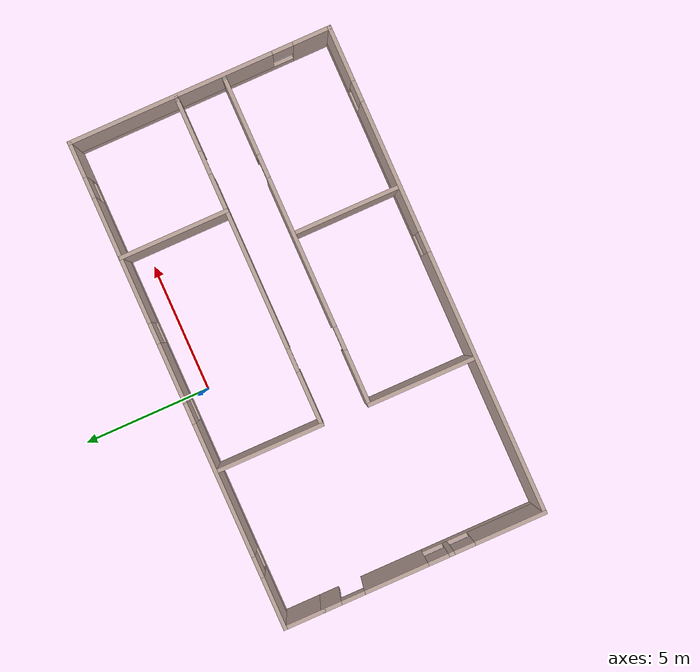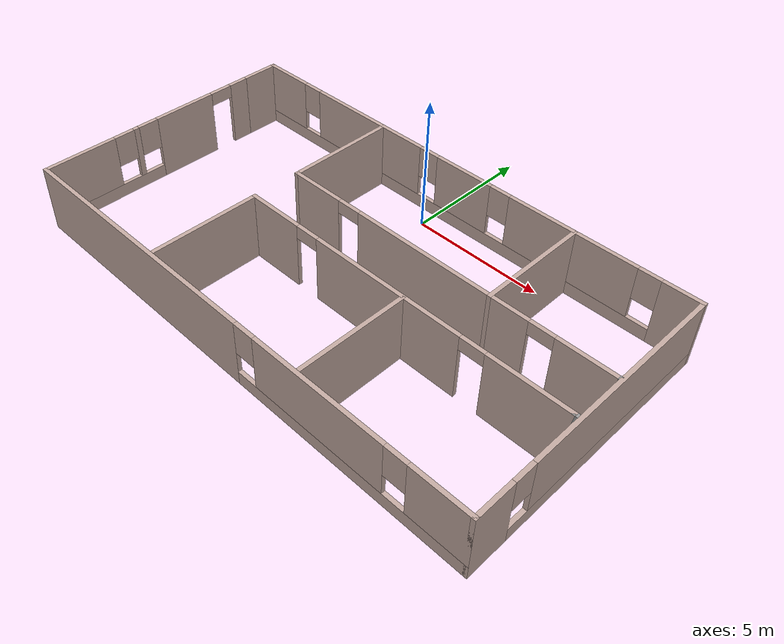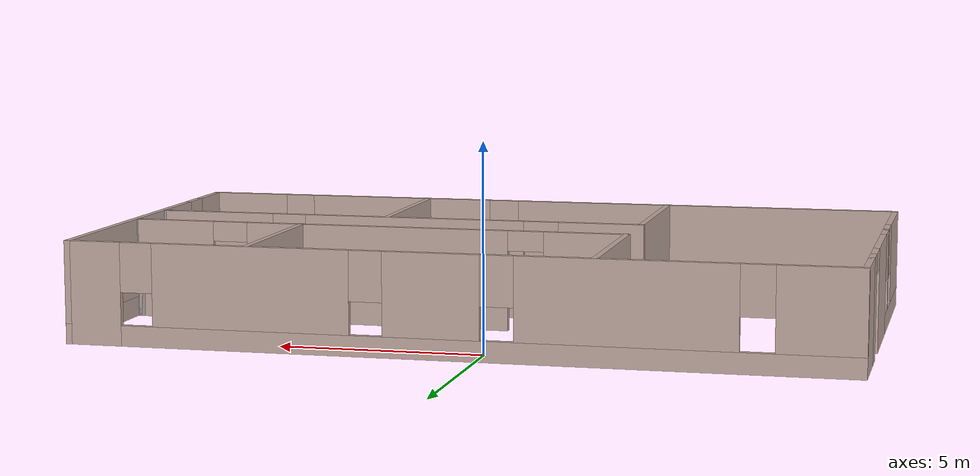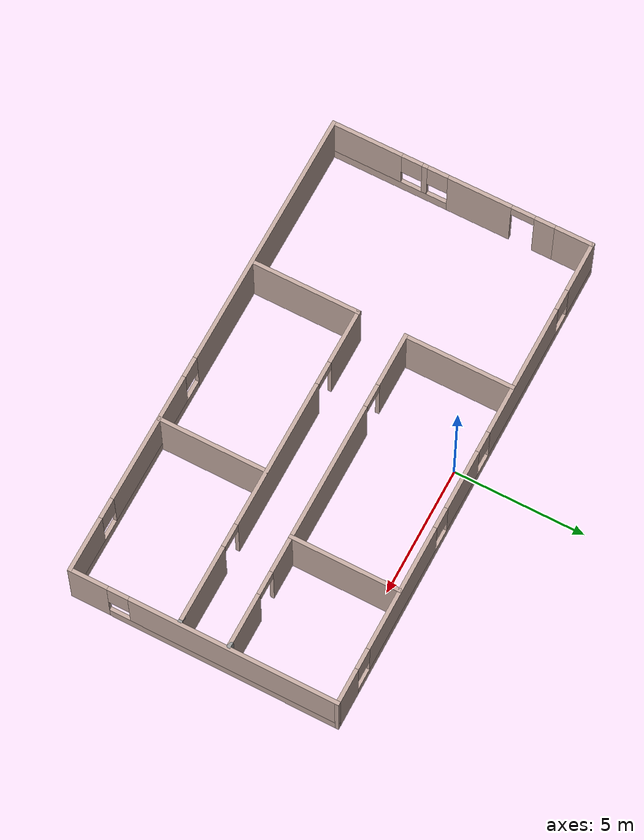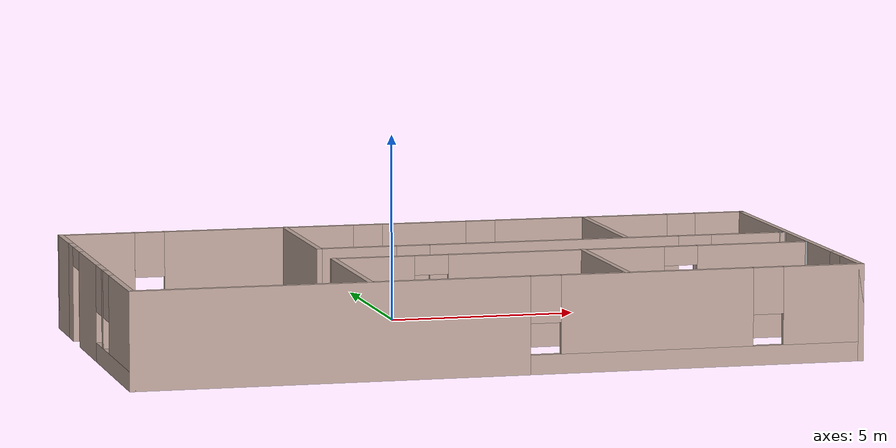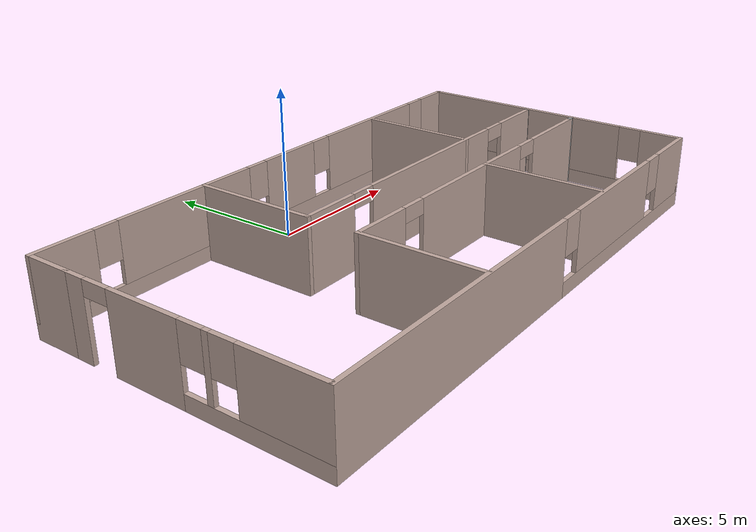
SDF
<?xml version='1.0'?>
<sdf version='1.6'>
  <model name='House_1level'>
    <pose frame=''>0.595293 -4.28963 0 0 -0 0</pose>
    <link name='Wall_0'>
      <pose frame=''>-9.425 -0.75 0 0 0 -1.5708</pose>
      <visual name='Wall_0_Visual_0'>
        <pose frame=''>-3.98433 0 1.25 0 -0 0</pose>
        <geometry>
          <box>
            <size>0.781343 0.15 2.5</size>
          </box>
        </geometry>
        <material>
          <script>
            <uri>file://media/materials/scripts/gazebo.material</uri>
            <name>Gazebo/Grey</name>
          </script>
          <ambient>0.760784 0.662745 0.627451 1</ambient>
        </material>
        <meta>
          <layer>0</layer>
        </meta>
      </visual>
      <collision name='Wall_0_Collision_0'>
        <geometry>
          <box>
            <size>0.781343 0.15 2.5</size>
          </box>
        </geometry>
        <pose frame=''>-3.98433 0 1.25 0 -0 0</pose>
      </collision>
      <visual name='Wall_0_Visual_1'>
        <pose frame=''>-1.4583 0 1.25 0 -0 0</pose>
        <geometry>
          <box>
            <size>2.47071 0.15 2.5</size>
          </box>
        </geometry>
        <material>
          <script>
            <uri>file://media/materials/scripts/gazebo.material</uri>
            <name>Gazebo/Grey</name>
          </script>
          <ambient>0.760784 0.662745 0.627451 1</ambient>
        </material>
        <meta>
          <layer>0</layer>
        </meta>
      </visual>
      <collision name='Wall_0_Collision_1'>
        <geometry>
          <box>
            <size>2.47071 0.15 2.5</size>
          </box>
        </geometry>
        <pose frame=''>-1.4583 0 1.25 0 -0 0</pose>
      </collision>
      <visual name='Wall_0_Visual_2'>
        <pose frame=''>2.07602 0 0.25 0 -0 0</pose>
        <geometry>
          <box>
            <size>4.59795 0.15 0.5</size>
          </box>
        </geometry>
        <material>
          <script>
            <uri>file://media/materials/scripts/gazebo.material</uri>
            <name>Gazebo/Grey</name>
          </script>
          <ambient>0.760784 0.662745 0.627451 1</ambient>
        </material>
        <meta>
          <layer>0</layer>
        </meta>
      </visual>
      <collision name='Wall_0_Collision_2'>
        <geometry>
          <box>
            <size>4.59795 0.15 0.5</size>
          </box>
        </geometry>
        <pose frame=''>2.07602 0 0.25 0 -0 0</pose>
      </collision>
      <visual name='Wall_0_Visual_3'>
        <pose frame=''>0.681787 0 1.5 0 -0 0</pose>
        <geometry>
          <box>
            <size>0.209478 0.15 2</size>
          </box>
        </geometry>
        <material>
          <script>
            <uri>file://media/materials/scripts/gazebo.material</uri>
            <name>Gazebo/Grey</name>
          </script>
          <ambient>0.760784 0.662745 0.627451 1</ambient>
        </material>
        <meta>
          <layer>0</layer>
        </meta>
      </visual>
      <collision name='Wall_0_Collision_3'>
        <geometry>
          <box>
            <size>0.209478 0.15 2</size>
          </box>
        </geometry>
        <pose frame=''>0.681787 0 1.5 0 -0 0</pose>
      </collision>
      <visual name='Wall_0_Visual_4'>
        <pose frame=''>2.98076 0 1.5 0 -0 0</pose>
        <geometry>
          <box>
            <size>2.78847 0.15 2</size>
          </box>
        </geometry>
        <material>
          <script>
            <uri>file://media/materials/scripts/gazebo.material</uri>
            <name>Gazebo/Grey</name>
          </script>
          <ambient>0.760784 0.662745 0.627451 1</ambient>
        </material>
        <meta>
          <layer>0</layer>
        </meta>
      </visual>
      <collision name='Wall_0_Collision_4'>
        <geometry>
          <box>
            <size>2.78847 0.15 2</size>
          </box>
        </geometry>
        <pose frame=''>2.98076 0 1.5 0 -0 0</pose>
      </collision>
      <visual name='Wall_0_Visual_5'>
        <pose frame=''>0.177048 0 1.9 0 -0 0</pose>
        <geometry>
          <box>
            <size>0.8 0.15 1.2</size>
          </box>
        </geometry>
        <material>
          <script>
            <uri>file://media/materials/scripts/gazebo.material</uri>
            <name>Gazebo/Grey</name>
          </script>
          <ambient>0.760784 0.662745 0.627451 1</ambient>
        </material>
        <meta>
          <layer>0</layer>
        </meta>
      </visual>
      <collision name='Wall_0_Collision_5'>
        <geometry>
          <box>
            <size>0.8 0.15 1.2</size>
          </box>
        </geometry>
        <pose frame=''>0.177048 0 1.9 0 -0 0</pose>
      </collision>
      <visual name='Wall_0_Visual_6'>
        <pose frame=''>1.18653 0 1.9 0 -0 0</pose>
        <geometry>
          <box>
            <size>0.8 0.15 1.2</size>
          </box>
        </geometry>
        <material>
          <script>
            <uri>file://media/materials/scripts/gazebo.material</uri>
            <name>Gazebo/Grey</name>
          </script>
          <ambient>0.760784 0.662745 0.627451 1</ambient>
        </material>
        <meta>
          <layer>0</layer>
        </meta>
      </visual>
      <collision name='Wall_0_Collision_6'>
        <geometry>
          <box>
            <size>0.8 0.15 1.2</size>
          </box>
        </geometry>
        <pose frame=''>1.18653 0 1.9 0 -0 0</pose>
      </collision>
      <visual name='Wall_0_Visual_7'>
        <pose frame=''>-3.14366 0 2.25 0 -0 0</pose>
        <geometry>
          <box>
            <size>0.9 0.15 0.5</size>
          </box>
        </geometry>
        <material>
          <script>
            <uri>file://media/materials/scripts/gazebo.material</uri>
            <name>Gazebo/Grey</name>
          </script>
          <ambient>0.760784 0.662745 0.627451 1</ambient>
        </material>
        <meta>
          <layer>0</layer>
        </meta>
      </visual>
      <collision name='Wall_0_Collision_7'>
        <geometry>
          <box>
            <size>0.9 0.15 0.5</size>
          </box>
        </geometry>
        <pose frame=''>-3.14366 0 2.25 0 -0 0</pose>
      </collision>
    </link>
    <link name='Wall_1'>
      <pose frame=''>0 -5.05 0 0 -0 0</pose>
      <visual name='Wall_1_Visual_0'>
        <pose frame=''>-4.39559 0 1.25 0 -0 0</pose>
        <geometry>
          <box>
            <size>10.2088 0.15 2.5</size>
          </box>
        </geometry>
        <material>
          <script>
            <uri>file://media/materials/scripts/gazebo.material</uri>
            <name>Gazebo/Grey</name>
          </script>
          <ambient>0.760784 0.662745 0.627451 1</ambient>
        </material>
        <meta>
          <layer>0</layer>
        </meta>
      </visual>
      <collision name='Wall_1_Collision_0'>
        <geometry>
          <box>
            <size>10.2088 0.15 2.5</size>
          </box>
        </geometry>
        <pose frame=''>-4.39559 0 1.25 0 -0 0</pose>
      </collision>
      <visual name='Wall_1_Visual_1'>
        <pose frame=''>5.10441 0 0.25 0 -0 0</pose>
        <geometry>
          <box>
            <size>8.79118 0.15 0.5</size>
          </box>
        </geometry>
        <material>
          <script>
            <uri>file://media/materials/scripts/gazebo.material</uri>
            <name>Gazebo/Grey</name>
          </script>
          <ambient>0.760784 0.662745 0.627451 1</ambient>
        </material>
        <meta>
          <layer>0</layer>
        </meta>
      </visual>
      <collision name='Wall_1_Collision_1'>
        <geometry>
          <box>
            <size>8.79118 0.15 0.5</size>
          </box>
        </geometry>
        <pose frame=''>5.10441 0 0.25 0 -0 0</pose>
      </collision>
      <visual name='Wall_1_Visual_2'>
        <pose frame=''>4.03018 0 1.5 0 -0 0</pose>
        <geometry>
          <box>
            <size>5.04273 0.15 2</size>
          </box>
        </geometry>
        <material>
          <script>
            <uri>file://media/materials/scripts/gazebo.material</uri>
            <name>Gazebo/Grey</name>
          </script>
          <ambient>0.760784 0.662745 0.627451 1</ambient>
        </material>
        <meta>
          <layer>0</layer>
        </meta>
      </visual>
      <collision name='Wall_1_Collision_2'>
        <geometry>
          <box>
            <size>5.04273 0.15 2</size>
          </box>
        </geometry>
        <pose frame=''>4.03018 0 1.5 0 -0 0</pose>
      </collision>
      <visual name='Wall_1_Visual_3'>
        <pose frame=''>8.42577 0 1.5 0 -0 0</pose>
        <geometry>
          <box>
            <size>2.14845 0.15 2</size>
          </box>
        </geometry>
        <material>
          <script>
            <uri>file://media/materials/scripts/gazebo.material</uri>
            <name>Gazebo/Grey</name>
          </script>
          <ambient>0.760784 0.662745 0.627451 1</ambient>
        </material>
        <meta>
          <layer>0</layer>
        </meta>
      </visual>
      <collision name='Wall_1_Collision_3'>
        <geometry>
          <box>
            <size>2.14845 0.15 2</size>
          </box>
        </geometry>
        <pose frame=''>8.42577 0 1.5 0 -0 0</pose>
      </collision>
      <visual name='Wall_1_Visual_4'>
        <pose frame=''>1.10882 0 1.9 0 -0 0</pose>
        <geometry>
          <box>
            <size>0.8 0.15 1.2</size>
          </box>
        </geometry>
        <material>
          <script>
            <uri>file://media/materials/scripts/gazebo.material</uri>
            <name>Gazebo/Grey</name>
          </script>
          <ambient>0.760784 0.662745 0.627451 1</ambient>
        </material>
        <meta>
          <layer>0</layer>
        </meta>
      </visual>
      <collision name='Wall_1_Collision_4'>
        <geometry>
          <box>
            <size>0.8 0.15 1.2</size>
          </box>
        </geometry>
        <pose frame=''>1.10882 0 1.9 0 -0 0</pose>
      </collision>
      <visual name='Wall_1_Visual_5'>
        <pose frame=''>6.95155 0 1.9 0 -0 0</pose>
        <geometry>
          <box>
            <size>0.8 0.15 1.2</size>
          </box>
        </geometry>
        <material>
          <script>
            <uri>file://media/materials/scripts/gazebo.material</uri>
            <name>Gazebo/Grey</name>
          </script>
          <ambient>0.760784 0.662745 0.627451 1</ambient>
        </material>
        <meta>
          <layer>0</layer>
        </meta>
      </visual>
      <collision name='Wall_1_Collision_5'>
        <geometry>
          <box>
            <size>0.8 0.15 1.2</size>
          </box>
        </geometry>
        <pose frame=''>6.95155 0 1.9 0 -0 0</pose>
      </collision>
    </link>
    <link name='Wall_10'>
      <collision name='Wall_10_Collision'>
        <geometry>
          <box>
            <size>4.25 0.15 2.5</size>
          </box>
        </geometry>
        <pose frame=''>0 0 1.25 0 -0 0</pose>
      </collision>
      <visual name='Wall_10_Visual'>
        <pose frame=''>0 0 1.25 0 -0 0</pose>
        <geometry>
          <box>
            <size>4.25 0.15 2.5</size>
          </box>
        </geometry>
        <material>
          <script>
            <uri>file://media/materials/scripts/gazebo.material</uri>
            <name>Gazebo/Grey</name>
          </script>
          <ambient>0.760784 0.662745 0.627451 1</ambient>
        </material>
        <meta>
          <layer>0</layer>
        </meta>
      </visual>
      <pose frame=''>-3.39206 -2.96315 0 0 0 -1.5708</pose>
    </link>
    <link name='Wall_12'>
      <pose frame=''>2.90794 -0.913146 0 0 -0 0</pose>
      <visual name='Wall_12_Visual_0'>
        <pose frame=''>-5.27566 0 1.25 0 -0 0</pose>
        <geometry>
          <box>
            <size>2.19869 0.15 2.5</size>
          </box>
        </geometry>
        <material>
          <script>
            <uri>file://media/materials/scripts/gazebo.material</uri>
            <name>Gazebo/Grey</name>
          </script>
          <ambient>0.760784 0.662745 0.627451 1</ambient>
        </material>
        <meta>
          <layer>0</layer>
        </meta>
      </visual>
      <collision name='Wall_12_Collision_0'>
        <geometry>
          <box>
            <size>2.19869 0.15 2.5</size>
          </box>
        </geometry>
        <pose frame=''>-5.27566 0 1.25 0 -0 0</pose>
      </collision>
      <visual name='Wall_12_Visual_1'>
        <pose frame=''>-0.37668 0 1.25 0 -0 0</pose>
        <geometry>
          <box>
            <size>5.79926 0.15 2.5</size>
          </box>
        </geometry>
        <material>
          <script>
            <uri>file://media/materials/scripts/gazebo.material</uri>
            <name>Gazebo/Grey</name>
          </script>
          <ambient>0.760784 0.662745 0.627451 1</ambient>
        </material>
        <meta>
          <layer>0</layer>
        </meta>
      </visual>
      <collision name='Wall_12_Collision_1'>
        <geometry>
          <box>
            <size>5.79926 0.15 2.5</size>
          </box>
        </geometry>
        <pose frame=''>-0.37668 0 1.25 0 -0 0</pose>
      </collision>
      <visual name='Wall_12_Visual_2'>
        <pose frame=''>4.89898 0 1.25 0 -0 0</pose>
        <geometry>
          <box>
            <size>2.95205 0.15 2.5</size>
          </box>
        </geometry>
        <material>
          <script>
            <uri>file://media/materials/scripts/gazebo.material</uri>
            <name>Gazebo/Grey</name>
          </script>
          <ambient>0.760784 0.662745 0.627451 1</ambient>
        </material>
        <meta>
          <layer>0</layer>
        </meta>
      </visual>
      <collision name='Wall_12_Collision_2'>
        <geometry>
          <box>
            <size>2.95205 0.15 2.5</size>
          </box>
        </geometry>
        <pose frame=''>4.89898 0 1.25 0 -0 0</pose>
      </collision>
      <visual name='Wall_12_Visual_3'>
        <pose frame=''>-3.72631 0 2.25 0 -0 0</pose>
        <geometry>
          <box>
            <size>0.9 0.15 0.5</size>
          </box>
        </geometry>
        <material>
          <script>
            <uri>file://media/materials/scripts/gazebo.material</uri>
            <name>Gazebo/Grey</name>
          </script>
          <ambient>0.760784 0.662745 0.627451 1</ambient>
        </material>
        <meta>
          <layer>0</layer>
        </meta>
      </visual>
      <collision name='Wall_12_Collision_3'>
        <geometry>
          <box>
            <size>0.9 0.15 0.5</size>
          </box>
        </geometry>
        <pose frame=''>-3.72631 0 2.25 0 -0 0</pose>
      </collision>
      <visual name='Wall_12_Visual_4'>
        <pose frame=''>2.97295 0 2.25 0 -0 0</pose>
        <geometry>
          <box>
            <size>0.9 0.15 0.5</size>
          </box>
        </geometry>
        <material>
          <script>
            <uri>file://media/materials/scripts/gazebo.material</uri>
            <name>Gazebo/Grey</name>
          </script>
          <ambient>0.760784 0.662745 0.627451 1</ambient>
        </material>
        <meta>
          <layer>0</layer>
        </meta>
      </visual>
      <collision name='Wall_12_Collision_4'>
        <geometry>
          <box>
            <size>0.9 0.15 0.5</size>
          </box>
        </geometry>
        <pose frame=''>2.97295 0 2.25 0 -0 0</pose>
      </collision>
    </link>
    <link name='Wall_13'>
      <collision name='Wall_13_Collision'>
        <geometry>
          <box>
            <size>0.25 0.15 2.5</size>
          </box>
        </geometry>
        <pose frame=''>0 0 1.25 0 -0 0</pose>
      </collision>
      <visual name='Wall_13_Visual'>
        <pose frame=''>0 0 1.25 0 -0 0</pose>
        <geometry>
          <box>
            <size>0.25 0.15 2.5</size>
          </box>
        </geometry>
        <material>
          <script>
            <uri>file://media/materials/scripts/gazebo.material</uri>
            <name>Gazebo/Grey</name>
          </script>
          <ambient>1 1 1 1</ambient>
        </material>
        <meta>
          <layer>0</layer>
        </meta>
      </visual>
      <pose frame=''>9.25794 -0.913146 0 0 -0 0</pose>
    </link>
    <link name='Wall_16'>
      <collision name='Wall_16_Collision'>
        <geometry>
          <box>
            <size>4.25 0.15 2.5</size>
          </box>
        </geometry>
        <pose frame=''>0 0 1.25 0 -0 0</pose>
      </collision>
      <visual name='Wall_16_Visual'>
        <pose frame=''>0 0 1.25 0 -0 0</pose>
        <geometry>
          <box>
            <size>4.25 0.15 2.5</size>
          </box>
        </geometry>
        <material>
          <script>
            <uri>file://media/materials/scripts/gazebo.material</uri>
            <name>Gazebo/Grey</name>
          </script>
          <ambient>0.760784 0.662745 0.627451 1</ambient>
        </material>
        <meta>
          <layer>0</layer>
        </meta>
      </visual>
      <pose frame=''>4.9606 2.98206 0 0 0 -1.5708</pose>
    </link>
    <link name='Wall_18'>
      <collision name='Wall_18_Collision'>
        <geometry>
          <box>
            <size>4.25 0.15 2.5</size>
          </box>
        </geometry>
        <pose frame=''>0 0 1.25 0 -0 0</pose>
      </collision>
      <visual name='Wall_18_Visual'>
        <pose frame=''>0 0 1.25 0 -0 0</pose>
        <geometry>
          <box>
            <size>4.25 0.15 2.5</size>
          </box>
        </geometry>
        <material>
          <script>
            <uri>file://media/materials/scripts/gazebo.material</uri>
            <name>Gazebo/Grey</name>
          </script>
          <ambient>0.760784 0.662745 0.627451 1</ambient>
        </material>
        <meta>
          <layer>0</layer>
        </meta>
      </visual>
      <pose frame=''>3.25673 -2.96315 0 0 0 -1.5708</pose>
    </link>
    <link name='Wall_2'>
      <pose frame=''>9.425 0 0 0 -0 1.5708</pose>
      <visual name='Wall_2_Visual_0'>
        <pose frame=''>-4.37316 0 1.25 0 -0 0</pose>
        <geometry>
          <box>
            <size>1.50368 0.15 2.5</size>
          </box>
        </geometry>
        <material>
          <script>
            <uri>file://media/materials/scripts/gazebo.material</uri>
            <name>Gazebo/Grey</name>
          </script>
          <ambient>0.760784 0.662745 0.627451 1</ambient>
        </material>
        <meta>
          <layer>0</layer>
        </meta>
      </visual>
      <collision name='Wall_2_Collision_0'>
        <geometry>
          <box>
            <size>1.50368 0.15 2.5</size>
          </box>
        </geometry>
        <pose frame=''>-4.37316 0 1.25 0 -0 0</pose>
      </collision>
      <visual name='Wall_2_Visual_1'>
        <pose frame=''>0.751842 0 0.25 0 -0 0</pose>
        <geometry>
          <box>
            <size>8.74631 0.15 0.5</size>
          </box>
        </geometry>
        <material>
          <script>
            <uri>file://media/materials/scripts/gazebo.material</uri>
            <name>Gazebo/Grey</name>
          </script>
          <ambient>0.760784 0.662745 0.627451 1</ambient>
        </material>
        <meta>
          <layer>0</layer>
        </meta>
      </visual>
      <collision name='Wall_2_Collision_1'>
        <geometry>
          <box>
            <size>8.74631 0.15 0.5</size>
          </box>
        </geometry>
        <pose frame=''>0.751842 0 0.25 0 -0 0</pose>
      </collision>
      <visual name='Wall_2_Visual_2'>
        <pose frame=''>1.15184 0 1.5 0 -0 0</pose>
        <geometry>
          <box>
            <size>7.94632 0.15 2</size>
          </box>
        </geometry>
        <material>
          <script>
            <uri>file://media/materials/scripts/gazebo.material</uri>
            <name>Gazebo/Grey</name>
          </script>
          <ambient>0.760784 0.662745 0.627451 1</ambient>
        </material>
        <meta>
          <layer>0</layer>
        </meta>
      </visual>
      <collision name='Wall_2_Collision_2'>
        <geometry>
          <box>
            <size>7.94632 0.15 2</size>
          </box>
        </geometry>
        <pose frame=''>1.15184 0 1.5 0 -0 0</pose>
      </collision>
      <visual name='Wall_2_Visual_3'>
        <pose frame=''>-3.22132 0 1.9 0 -0 0</pose>
        <geometry>
          <box>
            <size>0.8 0.15 1.2</size>
          </box>
        </geometry>
        <material>
          <script>
            <uri>file://media/materials/scripts/gazebo.material</uri>
            <name>Gazebo/Grey</name>
          </script>
          <ambient>0.760784 0.662745 0.627451 1</ambient>
        </material>
        <meta>
          <layer>0</layer>
        </meta>
      </visual>
      <collision name='Wall_2_Collision_3'>
        <geometry>
          <box>
            <size>0.8 0.15 1.2</size>
          </box>
        </geometry>
        <pose frame=''>-3.22132 0 1.9 0 -0 0</pose>
      </collision>
    </link>
    <link name='Wall_3'>
      <pose frame=''>0 5.05 0 0 -0 3.14159</pose>
      <visual name='Wall_3_Visual_0'>
        <pose frame=''>-8.79286 0 1.25 0 -0 0</pose>
        <geometry>
          <box>
            <size>1.41429 0.15 2.5</size>
          </box>
        </geometry>
        <material>
          <script>
            <uri>file://media/materials/scripts/gazebo.material</uri>
            <name>Gazebo/Grey</name>
          </script>
          <ambient>0.760784 0.662745 0.627451 1</ambient>
        </material>
        <meta>
          <layer>0</layer>
        </meta>
      </visual>
      <collision name='Wall_3_Collision_0'>
        <geometry>
          <box>
            <size>1.41429 0.15 2.5</size>
          </box>
        </geometry>
        <pose frame=''>-8.79286 0 1.25 0 -0 0</pose>
      </collision>
      <visual name='Wall_3_Visual_1'>
        <pose frame=''>0.707143 0 0.25 0 -0 0</pose>
        <geometry>
          <box>
            <size>17.5857 0.15 0.5</size>
          </box>
        </geometry>
        <material>
          <script>
            <uri>file://media/materials/scripts/gazebo.material</uri>
            <name>Gazebo/Grey</name>
          </script>
          <ambient>0.760784 0.662745 0.627451 1</ambient>
        </material>
        <meta>
          <layer>0</layer>
        </meta>
      </visual>
      <collision name='Wall_3_Collision_1'>
        <geometry>
          <box>
            <size>17.5857 0.15 0.5</size>
          </box>
        </geometry>
        <pose frame=''>0.707143 0 0.25 0 -0 0</pose>
      </collision>
      <visual name='Wall_3_Visual_2'>
        <pose frame=''>-4.85612 0 1.5 0 -0 0</pose>
        <geometry>
          <box>
            <size>4.85919 0.15 2</size>
          </box>
        </geometry>
        <material>
          <script>
            <uri>file://media/materials/scripts/gazebo.material</uri>
            <name>Gazebo/Grey</name>
          </script>
          <ambient>0.760784 0.662745 0.627451 1</ambient>
        </material>
        <meta>
          <layer>0</layer>
        </meta>
      </visual>
      <collision name='Wall_3_Collision_2'>
        <geometry>
          <box>
            <size>4.85919 0.15 2</size>
          </box>
        </geometry>
        <pose frame=''>-4.85612 0 1.5 0 -0 0</pose>
      </collision>
      <visual name='Wall_3_Visual_3'>
        <pose frame=''>-0.466421 0 1.5 0 -0 0</pose>
        <geometry>
          <box>
            <size>2.3202 0.15 2</size>
          </box>
        </geometry>
        <material>
          <script>
            <uri>file://media/materials/scripts/gazebo.material</uri>
            <name>Gazebo/Grey</name>
          </script>
          <ambient>0.760784 0.662745 0.627451 1</ambient>
        </material>
        <meta>
          <layer>0</layer>
        </meta>
      </visual>
      <collision name='Wall_3_Collision_3'>
        <geometry>
          <box>
            <size>2.3202 0.15 2</size>
          </box>
        </geometry>
        <pose frame=''>-0.466421 0 1.5 0 -0 0</pose>
      </collision>
      <visual name='Wall_3_Visual_4'>
        <pose frame=''>4.07623 0 1.5 0 -0 0</pose>
        <geometry>
          <box>
            <size>5.16509 0.15 2</size>
          </box>
        </geometry>
        <material>
          <script>
            <uri>file://media/materials/scripts/gazebo.material</uri>
            <name>Gazebo/Grey</name>
          </script>
          <ambient>0.760784 0.662745 0.627451 1</ambient>
        </material>
        <meta>
          <layer>0</layer>
        </meta>
      </visual>
      <collision name='Wall_3_Collision_4'>
        <geometry>
          <box>
            <size>5.16509 0.15 2</size>
          </box>
        </geometry>
        <pose frame=''>4.07623 0 1.5 0 -0 0</pose>
      </collision>
      <visual name='Wall_3_Visual_5'>
        <pose frame=''>8.47939 0 1.5 0 -0 0</pose>
        <geometry>
          <box>
            <size>2.04122 0.15 2</size>
          </box>
        </geometry>
        <material>
          <script>
            <uri>file://media/materials/scripts/gazebo.material</uri>
            <name>Gazebo/Grey</name>
          </script>
          <ambient>0.760784 0.662745 0.627451 1</ambient>
        </material>
        <meta>
          <layer>0</layer>
        </meta>
      </visual>
      <collision name='Wall_3_Collision_5'>
        <geometry>
          <box>
            <size>2.04122 0.15 2</size>
          </box>
        </geometry>
        <pose frame=''>8.47939 0 1.5 0 -0 0</pose>
      </collision>
      <visual name='Wall_3_Visual_6'>
        <pose frame=''>-7.68572 0 1.9 0 -0 0</pose>
        <geometry>
          <box>
            <size>0.8 0.15 1.2</size>
          </box>
        </geometry>
        <material>
          <script>
            <uri>file://media/materials/scripts/gazebo.material</uri>
            <name>Gazebo/Grey</name>
          </script>
          <ambient>0.760784 0.662745 0.627451 1</ambient>
        </material>
        <meta>
          <layer>0</layer>
        </meta>
      </visual>
      <collision name='Wall_3_Collision_6'>
        <geometry>
          <box>
            <size>0.8 0.15 1.2</size>
          </box>
        </geometry>
        <pose frame=''>-7.68572 0 1.9 0 -0 0</pose>
      </collision>
      <visual name='Wall_3_Visual_7'>
        <pose frame=''>-2.02652 0 1.9 0 -0 0</pose>
        <geometry>
          <box>
            <size>0.8 0.15 1.2</size>
          </box>
        </geometry>
        <material>
          <script>
            <uri>file://media/materials/scripts/gazebo.material</uri>
            <name>Gazebo/Grey</name>
          </script>
          <ambient>0.760784 0.662745 0.627451 1</ambient>
        </material>
        <meta>
          <layer>0</layer>
        </meta>
      </visual>
      <collision name='Wall_3_Collision_7'>
        <geometry>
          <box>
            <size>0.8 0.15 1.2</size>
          </box>
        </geometry>
        <pose frame=''>-2.02652 0 1.9 0 -0 0</pose>
      </collision>
      <visual name='Wall_3_Visual_8'>
        <pose frame=''>1.09368 0 1.9 0 -0 0</pose>
        <geometry>
          <box>
            <size>0.8 0.15 1.2</size>
          </box>
        </geometry>
        <material>
          <script>
            <uri>file://media/materials/scripts/gazebo.material</uri>
            <name>Gazebo/Grey</name>
          </script>
          <ambient>0.760784 0.662745 0.627451 1</ambient>
        </material>
        <meta>
          <layer>0</layer>
        </meta>
      </visual>
      <collision name='Wall_3_Collision_8'>
        <geometry>
          <box>
            <size>0.8 0.15 1.2</size>
          </box>
        </geometry>
        <pose frame=''>1.09368 0 1.9 0 -0 0</pose>
      </collision>
      <visual name='Wall_3_Visual_9'>
        <pose frame=''>7.05877 0 1.9 0 -0 0</pose>
        <geometry>
          <box>
            <size>0.8 0.15 1.2</size>
          </box>
        </geometry>
        <material>
          <script>
            <uri>file://media/materials/scripts/gazebo.material</uri>
            <name>Gazebo/Grey</name>
          </script>
          <ambient>0.760784 0.662745 0.627451 1</ambient>
        </material>
        <meta>
          <layer>0</layer>
        </meta>
      </visual>
      <collision name='Wall_3_Collision_9'>
        <geometry>
          <box>
            <size>0.8 0.15 1.2</size>
          </box>
        </geometry>
        <pose frame=''>7.05877 0 1.9 0 -0 0</pose>
      </collision>
    </link>
    <link name='Wall_4'>
      <collision name='Wall_4_Collision'>
        <geometry>
          <box>
            <size>1.65 0.15 2.5</size>
          </box>
        </geometry>
        <pose frame=''>0 0 1.25 0 -0 0</pose>
      </collision>
      <visual name='Wall_4_Visual'>
        <pose frame=''>0 0 1.25 0 -0 0</pose>
        <geometry>
          <box>
            <size>1.65 0.15 2.5</size>
          </box>
        </geometry>
        <material>
          <script>
            <uri>file://media/materials/scripts/gazebo.material</uri>
            <name>Gazebo/Grey</name>
          </script>
          <ambient>0.760784 0.662745 0.627451 1</ambient>
        </material>
        <meta>
          <layer>0</layer>
        </meta>
      </visual>
      <pose frame=''>-9.425 4.3 0 0 0 -1.5708</pose>
    </link>
    <link name='Wall_6'>
      <collision name='Wall_6_Collision'>
        <geometry>
          <box>
            <size>4.25 0.15 2.5</size>
          </box>
        </geometry>
        <pose frame=''>0 0 1.25 0 -0 0</pose>
      </collision>
      <visual name='Wall_6_Visual'>
        <pose frame=''>0 0 1.25 0 -0 0</pose>
        <geometry>
          <box>
            <size>4.25 0.15 2.5</size>
          </box>
        </geometry>
        <material>
          <script>
            <uri>file://media/materials/scripts/gazebo.material</uri>
            <name>Gazebo/Grey</name>
          </script>
          <ambient>0.760784 0.662745 0.627451 1</ambient>
        </material>
        <meta>
          <layer>0</layer>
        </meta>
      </visual>
      <pose frame=''>-3.35688 2.98206 0 0 0 -1.5708</pose>
    </link>
    <link name='Wall_7'>
      <pose frame=''>2.94312 0.932064 0 0 -0 0</pose>
      <visual name='Wall_7_Visual_0'>
        <pose frame=''>-5.30854 0 1.25 0 -0 0</pose>
        <geometry>
          <box>
            <size>2.13292 0.15 2.5</size>
          </box>
        </geometry>
        <material>
          <script>
            <uri>file://media/materials/scripts/gazebo.material</uri>
            <name>Gazebo/Grey</name>
          </script>
          <ambient>0.760784 0.662745 0.627451 1</ambient>
        </material>
        <meta>
          <layer>0</layer>
        </meta>
      </visual>
      <collision name='Wall_7_Collision_0'>
        <geometry>
          <box>
            <size>2.13292 0.15 2.5</size>
          </box>
        </geometry>
        <pose frame=''>-5.30854 0 1.25 0 -0 0</pose>
      </collision>
      <visual name='Wall_7_Visual_1'>
        <pose frame=''>0.046994 0 1.25 0 -0 0</pose>
        <geometry>
          <box>
            <size>6.77815 0.15 2.5</size>
          </box>
        </geometry>
        <material>
          <script>
            <uri>file://media/materials/scripts/gazebo.material</uri>
            <name>Gazebo/Grey</name>
          </script>
          <ambient>0.760784 0.662745 0.627451 1</ambient>
        </material>
        <meta>
          <layer>0</layer>
        </meta>
      </visual>
      <collision name='Wall_7_Collision_1'>
        <geometry>
          <box>
            <size>6.77815 0.15 2.5</size>
          </box>
        </geometry>
        <pose frame=''>0.046994 0 1.25 0 -0 0</pose>
      </collision>
      <visual name='Wall_7_Visual_2'>
        <pose frame=''>5.35553 0 1.25 0 -0 0</pose>
        <geometry>
          <box>
            <size>2.03893 0.15 2.5</size>
          </box>
        </geometry>
        <material>
          <script>
            <uri>file://media/materials/scripts/gazebo.material</uri>
            <name>Gazebo/Grey</name>
          </script>
          <ambient>0.760784 0.662745 0.627451 1</ambient>
        </material>
        <meta>
          <layer>0</layer>
        </meta>
      </visual>
      <collision name='Wall_7_Collision_2'>
        <geometry>
          <box>
            <size>2.03893 0.15 2.5</size>
          </box>
        </geometry>
        <pose frame=''>5.35553 0 1.25 0 -0 0</pose>
      </collision>
      <visual name='Wall_7_Visual_3'>
        <pose frame=''>-3.79208 0 2.25 0 -0 0</pose>
        <geometry>
          <box>
            <size>0.9 0.15 0.5</size>
          </box>
        </geometry>
        <material>
          <script>
            <uri>file://media/materials/scripts/gazebo.material</uri>
            <name>Gazebo/Grey</name>
          </script>
          <ambient>0.760784 0.662745 0.627451 1</ambient>
        </material>
        <meta>
          <layer>0</layer>
        </meta>
      </visual>
      <collision name='Wall_7_Collision_3'>
        <geometry>
          <box>
            <size>0.9 0.15 0.5</size>
          </box>
        </geometry>
        <pose frame=''>-3.79208 0 2.25 0 -0 0</pose>
      </collision>
      <visual name='Wall_7_Visual_4'>
        <pose frame=''>3.88607 0 2.25 0 -0 0</pose>
        <geometry>
          <box>
            <size>0.9 0.15 0.5</size>
          </box>
        </geometry>
        <material>
          <script>
            <uri>file://media/materials/scripts/gazebo.material</uri>
            <name>Gazebo/Grey</name>
          </script>
          <ambient>0.760784 0.662745 0.627451 1</ambient>
        </material>
        <meta>
          <layer>0</layer>
        </meta>
      </visual>
      <collision name='Wall_7_Collision_4'>
        <geometry>
          <box>
            <size>0.9 0.15 0.5</size>
          </box>
        </geometry>
        <pose frame=''>3.88607 0 2.25 0 -0 0</pose>
      </collision>
    </link>
    <link name='Wall_8'>
      <collision name='Wall_8_Collision'>
        <geometry>
          <box>
            <size>0.25 0.15 2.5</size>
          </box>
        </geometry>
        <pose frame=''>0 0 1.25 0 -0 0</pose>
      </collision>
      <visual name='Wall_8_Visual'>
        <pose frame=''>0 0 1.25 0 -0 0</pose>
        <geometry>
          <box>
            <size>0.25 0.15 2.5</size>
          </box>
        </geometry>
        <material>
          <script>
            <uri>file://media/materials/scripts/gazebo.material</uri>
            <name>Gazebo/Grey</name>
          </script>
          <ambient>1 1 1 1</ambient>
        </material>
        <meta>
          <layer>0</layer>
        </meta>
      </visual>
      <pose frame=''>9.29312 0.932064 0 0 -0 0</pose>
    </link>
    <static>1</static>
  </model>
</sdf>
